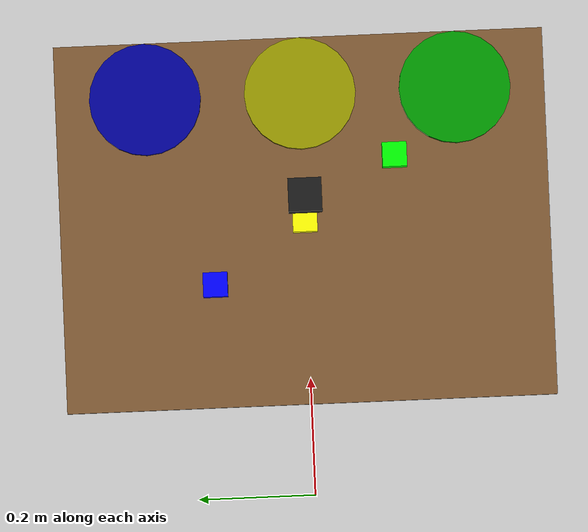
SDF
<?xml version="1.0" ?>
<sdf version="1.6">
  <world name="ecosort_world">
    <physics name="1ms" type="ignored">
      <max_step_size>0.001</max_step_size>
      <real_time_factor>1.0</real_time_factor>
    </physics>

    <plugin filename="gz-sim-physics-system" name="gz::sim::systems::Physics"></plugin>
    <plugin filename="gz-sim-user-commands-system" name="gz::sim::systems::UserCommands"></plugin>
    <plugin filename="gz-sim-scene-broadcaster-system" name="gz::sim::systems::SceneBroadcaster"></plugin>
    <plugin filename="gz-sim-contact-system" name="gz::sim::systems::Contact"></plugin>
    <!-- Necesario para que los sensores de cámara rendericen imagen -->
    <plugin filename="gz-sim-sensors-system" name="gz::sim::systems::Sensors">
      <render_engine>ogre2</render_engine>
    </plugin>

    <light type="directional" name="sun">
      <cast_shadows>true</cast_shadows>
      <pose>0 0 10 0 0 0</pose>
      <diffuse>0.8 0.8 0.8 1</diffuse>
      <specular>0.2 0.2 0.2 1</specular>
      <attenuation>
        <range>1000</range>
        <constant>0.9</constant>
        <linear>0.01</linear>
        <quadratic>0.001</quadratic>
      </attenuation>
      <direction>-0.5 0.1 -0.9</direction>
    </light>

    <model name="ground_plane">
      <static>true</static>
      <link name="link">
        <collision name="collision">
          <geometry><plane><normal>0 0 1</normal><size>100 100</size></plane></geometry>
        </collision>
        <visual name="visual">
          <geometry><plane><normal>0 0 1</normal><size>100 100</size></plane></geometry>
          <material>
            <ambient>0.8 0.8 0.8 1</ambient>
            <diffuse>0.8 0.8 0.8 1</diffuse>
            <specular>0.8 0.8 0.8 1</specular>
          </material>
        </visual>
      </link>
    </model>

    <model name="work_table">
      <static>true</static>
      <link name="table_link">
        <collision name="tapa_collision">
          <pose>0.45 0 0.385 0 0 0</pose>
          <geometry><box><size>0.6 0.8 0.03</size></box></geometry>
        </collision>
        <visual name="tapa_visual">
          <pose>0.45 0 0.385 0 0 0</pose>
          <geometry><box><size>0.6 0.8 0.03</size></box></geometry>
          <material>
            <ambient>0.5 0.35 0.2 1</ambient>
            <diffuse>0.5 0.35 0.2 1</diffuse>
          </material>
        </visual>

        <collision name="pata_1_collision">
          <pose>0.20 0.35 0.185 0 0 0</pose>
          <geometry><cylinder><radius>0.02</radius><length>0.37</length></cylinder></geometry>
        </collision>
        <visual name="pata_1_visual">
          <pose>0.20 0.35 0.185 0 0 0</pose>
          <geometry><cylinder><radius>0.02</radius><length>0.37</length></cylinder></geometry>
          <material><ambient>0.3 0.2 0.1 1</ambient><diffuse>0.3 0.2 0.1 1</diffuse></material>
        </visual>

        <collision name="pata_2_collision">
          <pose>0.20 -0.35 0.185 0 0 0</pose>
          <geometry><cylinder><radius>0.02</radius><length>0.37</length></cylinder></geometry>
        </collision>
        <visual name="pata_2_visual">
          <pose>0.20 -0.35 0.185 0 0 0</pose>
          <geometry><cylinder><radius>0.02</radius><length>0.37</length></cylinder></geometry>
          <material><ambient>0.3 0.2 0.1 1</ambient><diffuse>0.3 0.2 0.1 1</diffuse></material>
        </visual>

        <collision name="pata_3_collision">
          <pose>0.70 0.35 0.185 0 0 0</pose>
          <geometry><cylinder><radius>0.02</radius><length>0.37</length></cylinder></geometry>
        </collision>
        <visual name="pata_3_visual">
          <pose>0.70 0.35 0.185 0 0 0</pose>
          <geometry><cylinder><radius>0.02</radius><length>0.37</length></cylinder></geometry>
          <material><ambient>0.3 0.2 0.1 1</ambient><diffuse>0.3 0.2 0.1 1</diffuse></material>
        </visual>

        <collision name="pata_4_collision">
          <pose>0.70 -0.35 0.185 0 0 0</pose>
          <geometry><cylinder><radius>0.02</radius><length>0.37</length></cylinder></geometry>
        </collision>
        <visual name="pata_4_visual">
          <pose>0.70 -0.35 0.185 0 0 0</pose>
          <geometry><cylinder><radius>0.02</radius><length>0.37</length></cylinder></geometry>
          <material><ambient>0.3 0.2 0.1 1</ambient><diffuse>0.3 0.2 0.1 1</diffuse></material>
        </visual>
      </link>
    </model>

    <!-- Cámara cenital fija, mirando hacia abajo sobre la mesa.
         rpy: pitch=+90deg rota el eje +X (frente de la cámara) hacia -Z. -->
    <model name="overhead_camera">
      <static>true</static>
      <pose>0.45 0 1.1 0 1.5708 0</pose>
      <link name="camera_link">
        <visual name="visual">
          <geometry><box><size>0.05 0.05 0.05</size></box></geometry>
          <material><ambient>0.1 0.1 0.1 1</ambient><diffuse>0.1 0.1 0.1 1</diffuse></material>
        </visual>
        <sensor name="overhead_camera_sensor" type="camera">
          <camera>
            <horizontal_fov>1.047</horizontal_fov>
            <image><width>640</width><height>480</height></image>
            <clip><near>0.05</near><far>10</far></clip>
          </camera>
          <always_on>true</always_on>
          <update_rate>15</update_rate>
          <visualize>true</visualize>
          <topic>ecosort/camera/image_raw</topic>
        </sensor>
      </link>
    </model>

    <!-- Objeto "papel" (azul) -->
    <model name="objeto_papel">
      <pose>0.35 0.15 0.42 0 0 0</pose>
      <link name="link">
        <inertial><mass>0.05</mass><inertia><ixx>0.00002</ixx><iyy>0.00002</iyy><izz>0.00002</izz><ixy>0</ixy><ixz>0</ixz><iyz>0</iyz></inertia></inertial>
        <collision name="collision">
          <geometry><box><size>0.04 0.04 0.04</size></box></geometry>
          <surface>
            <friction><ode><mu>100000.0</mu><mu2>100000.0</mu2></ode></friction>
            <contact><ode><kp>1e+5</kp><kd>1</kd></ode></contact>
          </surface>
        </collision>
        <visual name="visual">
          <geometry><box><size>0.04 0.04 0.04</size></box></geometry>
          <material><ambient>0 0 1 1</ambient><diffuse>0 0 1 1</diffuse></material>
        </visual>
      </link>
    </model>

    <!-- Objeto "plástico" (amarillo) -->
    <model name="objeto_plastico">
      <pose>0.45 0 0.42 0 0 0</pose>
      <link name="link">
        <inertial><mass>0.05</mass><inertia><ixx>0.00002</ixx><iyy>0.00002</iyy><izz>0.00002</izz><ixy>0</ixy><ixz>0</ixz><iyz>0</iyz></inertia></inertial>
        <collision name="collision">
          <geometry><box><size>0.04 0.04 0.04</size></box></geometry>
          <surface>
            <friction><ode><mu>100000.0</mu><mu2>100000.0</mu2></ode></friction>
            <contact><ode><kp>1e+5</kp><kd>1</kd></ode></contact>
          </surface>
        </collision>
        <visual name="visual">
          <geometry><box><size>0.04 0.04 0.04</size></box></geometry>
          <material><ambient>1 1 0 1</ambient><diffuse>1 1 0 1</diffuse></material>
        </visual>
      </link>
    </model>

    <!-- Objeto "vidrio" (verde) -->
    <model name="objeto_vidrio">
      <pose>0.55 -0.15 0.42 0 0 0</pose>
      <link name="link">
        <inertial><mass>0.05</mass><inertia><ixx>0.00002</ixx><iyy>0.00002</iyy><izz>0.00002</izz><ixy>0</ixy><ixz>0</ixz><iyz>0</iyz></inertia></inertial>
        <collision name="collision">
          <geometry><box><size>0.04 0.04 0.04</size></box></geometry>
          <surface>
            <friction><ode><mu>100000.0</mu><mu2>100000.0</mu2></ode></friction>
            <contact><ode><kp>1e+5</kp><kd>1</kd></ode></contact>
          </surface>
        </collision>
        <visual name="visual">
          <geometry><box><size>0.04 0.04 0.04</size></box></geometry>
          <material><ambient>0 1 0 1</ambient><diffuse>0 1 0 1</diffuse></material>
        </visual>
      </link>
    </model>

    <model name="bin_papel">
      <static>true</static>
      <pose>0.65 0.25 0.4 0 0 0</pose>
      <link name="link">
        <visual name="cuerpo">
          <pose>0 0 0.045 0 0 0</pose>
          <geometry><cylinder><radius>0.08</radius><length>0.09</length></cylinder></geometry>
          <material><ambient>0 0 1 1</ambient><diffuse>0 0 1 1</diffuse></material>
        </visual>
        <visual name="borde">
          <pose>0 0 0.0975 0 0 0</pose>
          <geometry><cylinder><radius>0.09</radius><length>0.015</length></cylinder></geometry>
          <material><ambient>0 0 0.6 1</ambient><diffuse>0 0 0.6 1</diffuse></material>
        </visual>
        <!-- "hueco": disco oscuro hundido en la boca, simula mirar hacia
             un interior vacío (SDF no tiene primitivas huecas/tubo) -->
        <visual name="hueco">
          <pose>0 0 0.086 0 0 0</pose>
          <geometry><cylinder><radius>0.068</radius><length>0.004</length></cylinder></geometry>
          <material><ambient>0.03 0.03 0.03 1</ambient><diffuse>0.03 0.03 0.03 1</diffuse></material>
        </visual>
      </link>
    </model>

    <model name="bin_plastico">
      <static>true</static>
      <pose>0.65 0 0.4 0 0 0</pose>
      <link name="link">
        <visual name="cuerpo">
          <pose>0 0 0.045 0 0 0</pose>
          <geometry><cylinder><radius>0.08</radius><length>0.09</length></cylinder></geometry>
          <material><ambient>1 1 0 1</ambient><diffuse>1 1 0 1</diffuse></material>
        </visual>
        <visual name="borde">
          <pose>0 0 0.0975 0 0 0</pose>
          <geometry><cylinder><radius>0.09</radius><length>0.015</length></cylinder></geometry>
          <material><ambient>0.6 0.6 0 1</ambient><diffuse>0.6 0.6 0 1</diffuse></material>
        </visual>
        <visual name="hueco">
          <pose>0 0 0.086 0 0 0</pose>
          <geometry><cylinder><radius>0.068</radius><length>0.004</length></cylinder></geometry>
          <material><ambient>0.03 0.03 0.03 1</ambient><diffuse>0.03 0.03 0.03 1</diffuse></material>
        </visual>
      </link>
    </model>

    <model name="bin_vidrio">
      <static>true</static>
      <pose>0.65 -0.25 0.4 0 0 0</pose>
      <link name="link">
        <visual name="cuerpo">
          <pose>0 0 0.045 0 0 0</pose>
          <geometry><cylinder><radius>0.08</radius><length>0.09</length></cylinder></geometry>
          <material><ambient>0 1 0 1</ambient><diffuse>0 1 0 1</diffuse></material>
        </visual>
        <visual name="borde">
          <pose>0 0 0.0975 0 0 0</pose>
          <geometry><cylinder><radius>0.09</radius><length>0.015</length></cylinder></geometry>
          <material><ambient>0 0.6 0 1</ambient><diffuse>0 0.6 0 1</diffuse></material>
        </visual>
        <visual name="hueco">
          <pose>0 0 0.086 0 0 0</pose>
          <geometry><cylinder><radius>0.068</radius><length>0.004</length></cylinder></geometry>
          <material><ambient>0.03 0.03 0.03 1</ambient><diffuse>0.03 0.03 0.03 1</diffuse></material>
        </visual>
      </link>
    </model>

  </world>
</sdf>
